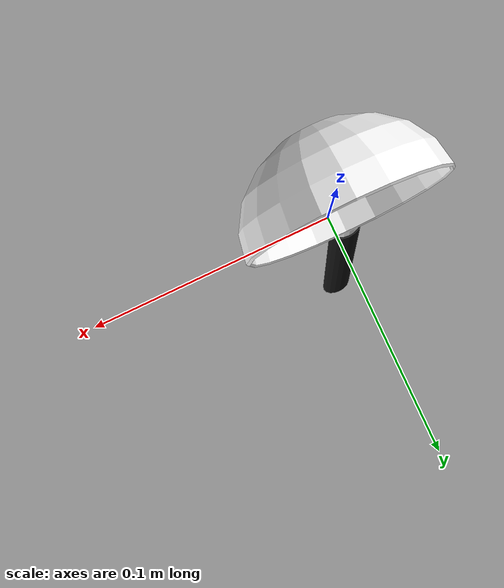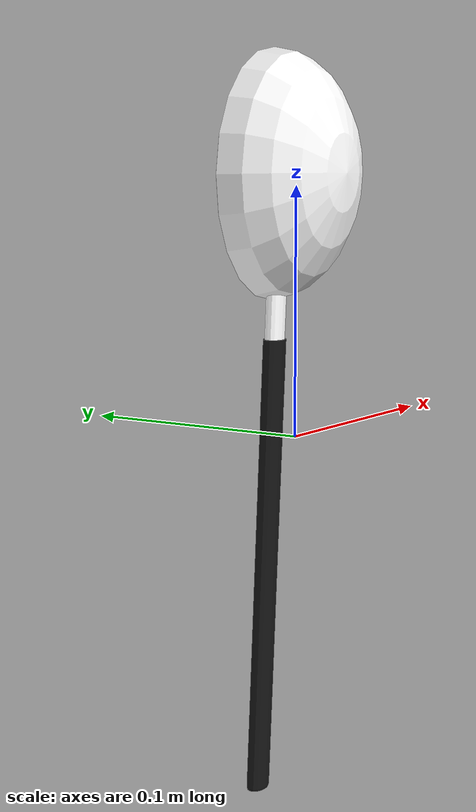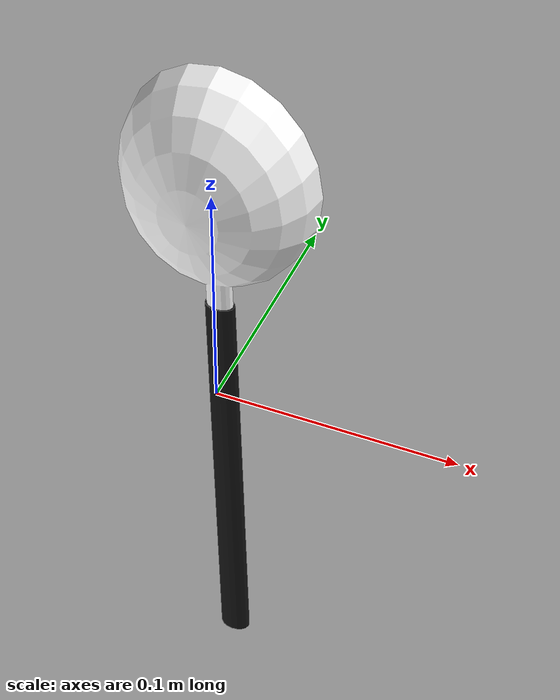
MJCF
<mujoco model="Ladle_2">
  <default>
    <default class="visual">
      <geom group="2" type="mesh" contype="0" conaffinity="0"/>
    </default>
    <default class="collision">
      <geom group="3" type="mesh"/>
    </default>
  </default>
  <asset>
    <material name="HammeredMetal_AlbedoTransparency" specular="0.5" shininess="0.5" rgba="1 1 1 1.0"/>
    <material name="Black.001" specular="0.5" shininess="0.5" rgba="0.07489837 0.07489837 0.07489837 1.0"/>
    <mesh file="Ladle_2_0.obj"/>
    <mesh file="Ladle_2_1.obj"/>
    <mesh file="Ladle_2_collision_0.obj"/>
    <mesh file="Ladle_2_collision_1.obj"/>
    <mesh file="Ladle_2_collision_2.obj"/>
    <mesh file="Ladle_2_collision_3.obj"/>
    <mesh file="Ladle_2_collision_4.obj"/>
    <mesh file="Ladle_2_collision_5.obj"/>
    <mesh file="Ladle_2_collision_6.obj"/>
    <mesh file="Ladle_2_collision_7.obj"/>
    <mesh file="Ladle_2_collision_8.obj"/>
    <mesh file="Ladle_2_collision_9.obj"/>
    <mesh file="Ladle_2_collision_10.obj"/>
    <mesh file="Ladle_2_collision_11.obj"/>
    <mesh file="Ladle_2_collision_12.obj"/>
  </asset>
  <worldbody>
    <body name="Ladle_2">
      <geom mesh="Ladle_2_0" material="Black.001" class="visual"/>
      <geom mesh="Ladle_2_1" material="HammeredMetal_AlbedoTransparency" class="visual"/>
      <geom mesh="Ladle_2_collision_0" rgba="0.47573751162662015 0.34475805177216745 0.7266315462463413 1" class="collision"/>
      <geom mesh="Ladle_2_collision_1" rgba="0.4665222346881185 0.3712535370948272 0.863493453115707 1" class="collision"/>
      <geom mesh="Ladle_2_collision_2" rgba="0.014539736149295268 0.28782711002225514 0.14451224726921785 1" class="collision"/>
      <geom mesh="Ladle_2_collision_3" rgba="0.20642569697489888 0.021766753907992875 0.6701788767414174 1" class="collision"/>
      <geom mesh="Ladle_2_collision_4" rgba="0.8807247033500799 0.6710720069110211 0.6339496178717733 1" class="collision"/>
      <geom mesh="Ladle_2_collision_5" rgba="0.6354005285836072 0.7981675849821781 0.9540178915116687 1" class="collision"/>
      <geom mesh="Ladle_2_collision_6" rgba="0.7004934237746361 0.27608084286225376 0.1113604008039828 1" class="collision"/>
      <geom mesh="Ladle_2_collision_7" rgba="0.9146442808291879 0.005154752512325778 0.5567712795659012 1" class="collision"/>
      <geom mesh="Ladle_2_collision_8" rgba="0.9717944434604521 0.055251284272598955 0.8909146336915348 1" class="collision"/>
      <geom mesh="Ladle_2_collision_9" rgba="0.2033783656114747 0.45007495153680876 0.43021754288793157 1" class="collision"/>
      <geom mesh="Ladle_2_collision_10" rgba="0.5744962696670113 0.5587582384316641 0.8338045324187404 1" class="collision"/>
      <geom mesh="Ladle_2_collision_11" rgba="0.5714962766316597 0.13393441877354517 0.6186045304950029 1" class="collision"/>
      <geom mesh="Ladle_2_collision_12" rgba="0.42820970709564277 0.5533148703297345 0.17095011967965767 1" class="collision"/>
    </body>
  </worldbody>
</mujoco>
